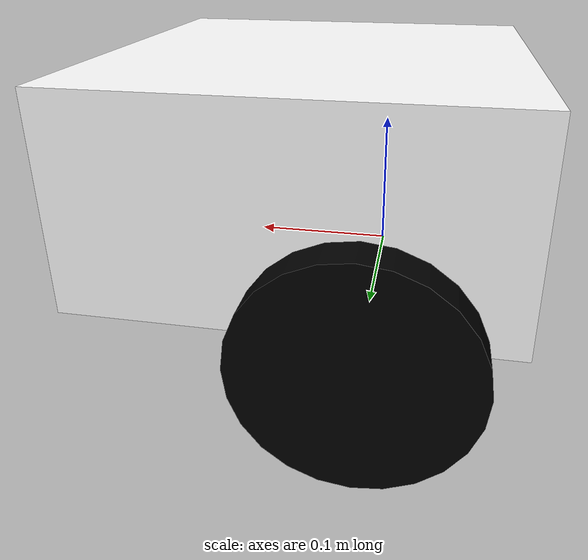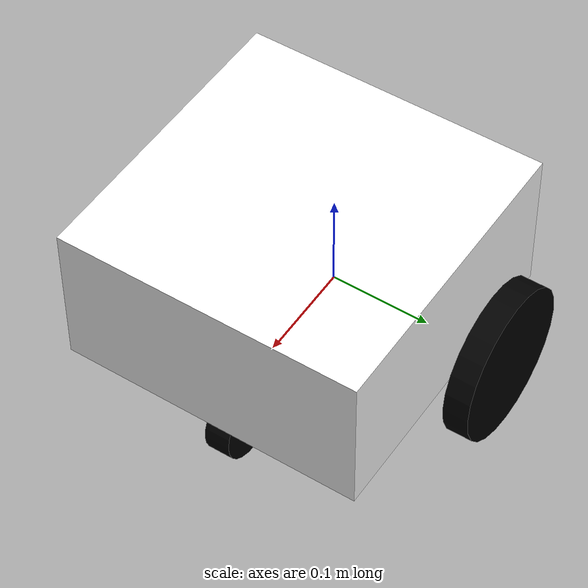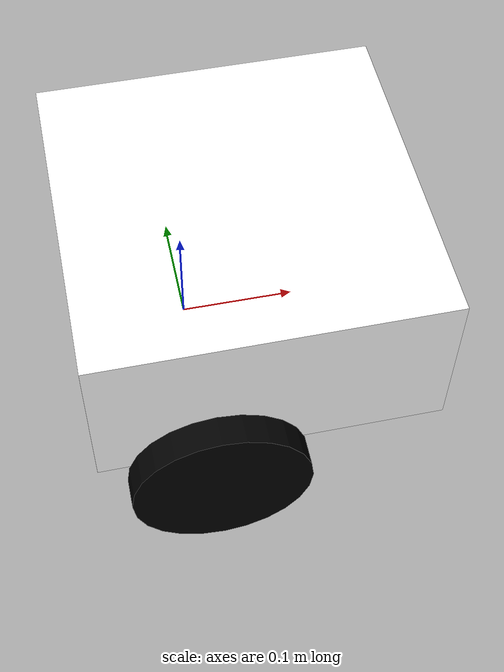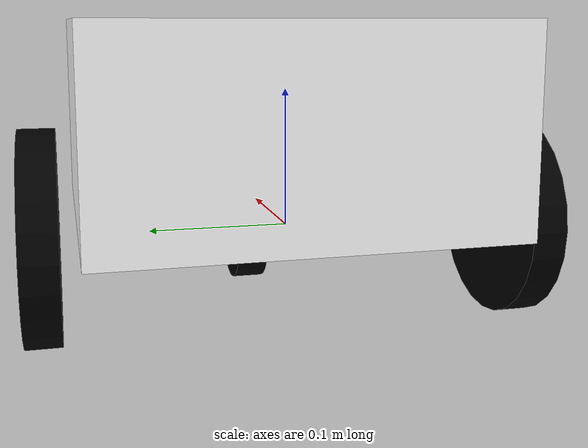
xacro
<?xml version="1.0"?>
<robot xmlns:xacro="http://www.ros.org/wiki/xacro">

    <xacro:include filename="inertial_macros.xacro"/>

    <material name="white">
        <color rgba ="1 1 1 1" />
    </material>

    <material name="black">
        <color rgba="0 0 0 1"/>
    </material>

    <!-- BASE -->
    <link name="base_link">

    </link>

    <!-- BASE_FOOTPRINT -->

    <joint name="base_footprint_joint" type="fixed">
        <parent link="base_link"/>
        <child link="base_footprint"/>
        <origin xyz="0.0 0.0 0.0" rpy="0.0 0.0 0.0"/>
    </joint>

    <link name="base_footprint">

    </link>

    <!-- CHASSIS -->
    <joint name="chassis_joint" type="fixed">
        <parent link="base_link"/>
        <child link="chassis"/>
        <origin xyz="-0.1 0.0 0.0"/>
    </joint>

    <link name="chassis">
        <visual>
            <origin xyz="0.15 0 0.075"/>
            <geometry>
                <box size="0.3 0.3 0.15"/>
            </geometry>
            <material name="white"/>
        </visual>

        <collision>
        <origin xyz="0.15 0 0.075"/>
            <geometry>
                <box size="0.3 0.3 0.15"/>
            </geometry>
        </collision>

        <xacro:inertial_box mass="0.5" x="0.3" y="0.3" z="0.15">
            <origin xyz="0.15 0.0 0.075"/>
        </xacro:inertial_box>
    </link>

    <gazebo reference="chassis">
        <material>Gazebo/White</material>
    </gazebo>

    <!-- LEFT WHEEL -->

    <joint name="left_wheel_joint" type="continuous">
        <parent link="base_link"/>
        <child link="left_wheel"/>
        <origin xyz="0.0 0.175 0.0" rpy="-${pi/2} 0.0 0.0"/>
        <axis xyz="0.0 0.0 1.0"/>
    </joint>

    <link name="left_wheel">
        <visual>
            <geometry>
                <cylinder radius="0.0762" length="0.0254"/>
            </geometry>
            <material name="black"/>
        </visual>

        <collision>
            <geometry>
                <cylinder radius="0.0762" length="0.0254"/>
            </geometry>
        </collision>

        <xacro:inertial_cylinder mass="0.1" length="0.0254" radius="0.0762">
            <origin xyz="0.0 0.0 0.0" rpy="0.0 0.0 0.0"/>
        </xacro:inertial_cylinder>
    </link>

    <gazebo reference="left_wheel">
        <material>Gazebo/Black</material>
    </gazebo>

    <!-- RIGHT WHEEL -->

    <joint name="right_wheel_joint" type="continuous">
        <parent link="base_link"/>
        <child link="right_wheel"/>
        <origin xyz="0.0 -0.175 0.0" rpy="${pi/2} 0.0 0.0"/>
        <axis xyz="0.0 0.0 1.0"/>
    </joint>

    <link name="right_wheel">
        <visual>
            <geometry>
                <cylinder radius="0.0762" length="0.0254"/>
            </geometry>
            <material name="black"/>
        </visual>

        <collision>
            <geometry>
                <cylinder radius="0.0762" length="0.0254"/>
            </geometry>
        </collision>

        <xacro:inertial_cylinder mass="0.1" length="0.0254" radius="0.0762">
            <origin xyz="0.0 0.0 0.0" rpy="0.0 0.0 0.0"/>
        </xacro:inertial_cylinder>
    </link>

    <gazebo reference="right_wheel">
        <material>Gazebo/Black</material>
    </gazebo>

    <!-- CASTER WHEEL-->

    <joint name="caster_wheel_join" type="fixed">
        <parent link="chassis"/>
        <child link="caster_wheel"/>
        <origin xyz="0.25 0.0 -0.04" rpy="-${pi/2} 0 0"/>
        <axis xyz="1.0 0 0"/>
    </joint>

    <link name="caster_wheel">
        <visual>
            <geometry>
                <cylinder radius="0.04" length="0.0254"/>
            </geometry>
            <material name="black"/>
        </visual>

        <collision>
            <geometry>
                <sphere radius="0.04"/>
            </geometry>
        </collision>

        <xacro:inertial_sphere mass="0.1" radius="0.04">
            <origin xyz="0.0 0.0 0.0" rpy="0.0 0.0 0.0"/>
        </xacro:inertial_sphere>
    </link>

    <gazebo reference="caster_wheel">
        <material>Gazebo/Black</material>
        <mu1 value="0.001"/>
        <mu2 value="0.001"/>
    </gazebo>
</robot>
